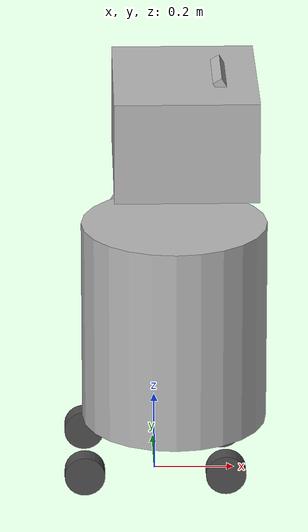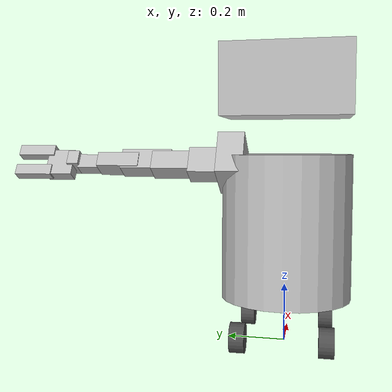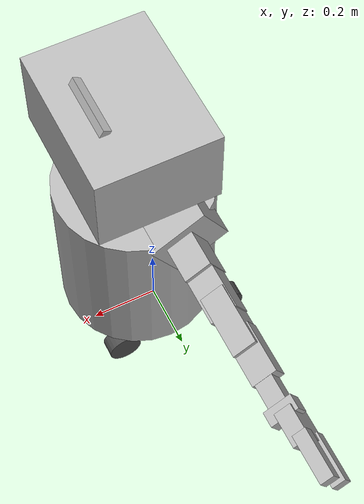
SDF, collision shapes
<sdf version='1.6'>
  <model name='mbot'>
    <link name='base_link'>
      <pose frame=''>0 0 0 0 -0 0</pose>
      <inertial>
        <pose frame=''>-2e-06 3e-06 0.000729 0 -0 0</pose>
        <mass>40.241</mass>
        <inertia>
          <ixx>1.52278</ixx>
          <ixy>8.39902e-06</ixy>
          <ixz>-4.11607e-05</ixz>
          <iyy>3.15312</iyy>
          <iyz>0.0074909</iyz>
          <izz>3.07235</izz>
        </inertia>
      </inertial>
      <collision name='base_link_collision'>
        <pose frame=''>0.05 0 0.4 0 -0 0</pose>
        <geometry>
          <cylinder>
            <length>0.515</length>
            <radius>0.23</radius>
          </cylinder>
        </geometry>
        <surface>
          <contact>
            <ode/>
          </contact>
          <friction>
            <ode/>
          </friction>
        </surface>
      </collision>
      <collision name='base_link_fixed_joint_lump__left_arm_base_link_collision_1'>
        <pose frame=''>-0.006972 0.187 0.625729 1.5708 1.04934 3.14159</pose>
        <geometry>
          <box>
            <size>0.154 0.177 0.094</size>
          </box>
        </geometry>
      </collision>
      <visual name='base_link_visual'>
        <pose frame=''>0 0 0.025 0 -0 0</pose>
        <geometry>
          <mesh>
            <scale>1 1 1</scale>
            <uri>model://mbot_description/meshes/body/mbot_body.dae</uri>
          </mesh>
        </geometry>
        <material>
          <script>
            <name>Gazebo/DepthMapVS</name>
            <uri>file://media/materials/scripts/gazebo.material</uri>
          </script>
        </material>
      </visual>
      <visual name='base_link_fixed_joint_lump__base_laser_rear_link_visual_1'>
        <pose frame=''>-0.2795 0 0.1335 -3.14159 -0 -3.14159</pose>
        <geometry>
          <mesh>
            <scale>1 1 1</scale>
            <uri>model://mbot_description/meshes/sensors/hokuyo.dae</uri>
          </mesh>
        </geometry>
        <material>
          <script>
            <uri>__default__</uri>
            <name>__default__</name>
          </script>
        </material>
      </visual>
      <visual name='base_link_fixed_joint_lump__base_laser_front_link_visual_2'>
        <pose frame=''>0.2785 0 0.1335 0 -0 0</pose>
        <geometry>
          <mesh>
            <scale>1 1 1</scale>
            <uri>model://mbot_description/meshes/sensors/hokuyo.dae</uri>
          </mesh>
        </geometry>
        <material>
          <script>
            <uri>__default__</uri>
            <name>__default__</name>
          </script>
        </material>
      </visual>
      <visual name='base_link_fixed_joint_lump__left_arm_base_link_visual_3'>
        <pose frame=''>0.003 0.14 0.62 1.5708 1.04934 3.14159</pose>
        <geometry>
          <mesh>
            <scale>1 1 1</scale>
            <uri>model://cyton_gamma_1500_description/meshes/base.dae</uri>
          </mesh>
        </geometry>
      </visual>
      <velocity_decay/>
      <gravity>1</gravity>
      <velocity_decay/>
      <sensor name='rear_hokuyo_sensor' type='ray'>
        <visualize>0</visualize>
        <update_rate>34.5</update_rate>
        <ray>
          <scan>
            <horizontal>
              <samples>720</samples>
              <resolution>1</resolution>
              <min_angle>-1.5708</min_angle>
              <max_angle>1.5708</max_angle>
            </horizontal>
          </scan>
          <range>
            <min>0.023</min>
            <max>60</max>
            <resolution>0.001</resolution>
          </range>
          <noise>
            <type>gaussian</type>
            <mean>0</mean>
            <stddev>0.01</stddev>
          </noise>
        </ray>
        <plugin name='gazebo_ros_rear_hokuyo_controller' filename='libgazebo_ros_laser.so'>
          <topicName>/scan_rear</topicName>
          <frameName>base_laser_rear_link</frameName>
        </plugin>
        <pose frame=''>-0.2795 0 0.1335 -3.14159 -0 -3.14159</pose>
      </sensor>
      <gravity>1</gravity>
      <velocity_decay/>
      <self_collide>0</self_collide>
      <sensor name='front_hokuyo_sensor' type='ray'>
        <visualize>0</visualize>
        <update_rate>4.3</update_rate>
        <ray>
          <scan>
            <horizontal>
              <samples>512</samples>
              <resolution>1</resolution>
              <min_angle>-1.5708</min_angle>
              <max_angle>1.5708</max_angle>
            </horizontal>
          </scan>
          <range>
            <min>0.0199999</min>
            <max>5.6</max>
            <resolution>0.001</resolution>
          </range>
          <noise>
            <type>gaussian</type>
            <mean>0</mean>
            <stddev>0.01</stddev>
          </noise>
        </ray>
        <plugin name='gazebo_ros_front_hokuyo_controller' filename='libgazebo_ros_laser.so'>
          <topicName>/scan_front</topicName>
          <frameName>base_laser_front_link</frameName>
        </plugin>
        <pose frame=''>0.2785 0 0.1335 0 -0 0</pose>
      </sensor>
    </link>
    <link name='head_link'>
      <pose frame=''>0.05 0 0.765 0 -0 0</pose>
      <inertial>
        <pose frame=''>0.002353 0 0.00098 0 -0 0</pose>
        <mass>10.2</mass>
        <inertia>
          <ixx>0.101076</ixx>
          <ixy>0</ixy>
          <ixz>-0.00117147</ixz>
          <iyy>0.103345</iyy>
          <iyz>0</iyz>
          <izz>0.103409</izz>
        </inertia>
      </inertial>
      <collision name='head_link_collision'>
        <pose frame=''>0.025 0 0.15 0 -0 0</pose>
        <geometry>
          <box>
            <size>0.35 0.45 0.25</size>
          </box>
        </geometry>
        <surface>
          <contact>
            <ode/>
          </contact>
          <friction>
            <ode/>
          </friction>
        </surface>
      </collision>
      <collision name='head_link_fixed_joint_lump__neck_camera_model_link_collision_1'>
        <pose frame=''>0.12 0 0.05 0 0.8 0</pose>
        <geometry>
          <box>
            <size>0.035 0.185 0.025</size>
          </box>
        </geometry>
      </collision>
      <visual name='head_link_visual'>
        <pose frame=''>0 0 0 0 -0 0</pose>
        <geometry>
          <mesh>
            <scale>1 1 1</scale>
            <uri>model://mbot_description/meshes/head/mbot_head.dae</uri>
          </mesh>
        </geometry>
        <material>
          <script>
            <name>Gazebo/DepthMapVS</name>
            <uri>file://media/materials/scripts/gazebo.material</uri>
          </script>
        </material>
      </visual>
      <visual name='head_link_fixed_joint_lump__neck_camera_model_link_visual_1'>
        <pose frame=''>0.146898 0 0.051729 0 0.8 0</pose>
        <geometry>
          <mesh>
            <scale>1 1 1</scale>
            <uri>model://mbot_description/meshes/sensors/asus_camera_simple.dae</uri>
          </mesh>
        </geometry>
      </visual>
      <velocity_decay/>
      <gravity>1</gravity>
      <gravity>1</gravity>
      <velocity_decay/>
      <self_collide>0</self_collide>
      <sensor name='neck_camera' type='depth'>
        <always_on>1</always_on>
        <update_rate>20</update_rate>
        <camera name='__default__'>
          <horizontal_fov>1.0472</horizontal_fov>
          <image>
            <format>B8G8R8</format>
            <width>640</width>
            <height>480</height>
          </image>
          <clip>
            <near>0.05</near>
            <far>8</far>
          </clip>
        </camera>
        <plugin name='neck_camera_camera_controller' filename='libgazebo_ros_openni_kinect.so'>
          <cameraName>neck_camera</cameraName>
          <alwaysOn>true</alwaysOn>
          <updateRate>10</updateRate>
          <imageTopicName>rgb/image_raw</imageTopicName>
          <depthImageTopicName>depth/image_raw</depthImageTopicName>
          <pointCloudTopicName>depth_registered/points</pointCloudTopicName>
          <cameraInfoTopicName>rgb/camera_info</cameraInfoTopicName>
          <depthImageCameraInfoTopicName>depth/camera_info</depthImageCameraInfoTopicName>
          <frameName>neck_camera_depth_optical_frame</frameName>
          <baseline>0.1</baseline>
          <distortion_k1>0.0</distortion_k1>
          <distortion_k2>0.0</distortion_k2>
          <distortion_k3>0.0</distortion_k3>
          <distortion_t1>0.0</distortion_t1>
          <distortion_t2>0.0</distortion_t2>
          <pointCloudCutoff>0.4</pointCloudCutoff>
        </plugin>
        <pose frame=''>0.177476 0.048777 0.044032 -0.00322 0.797828 0.093157</pose>
      </sensor>
    </link>
    <joint name='base_link_to_head_link_joint' type='revolute'>
      <child>head_link</child>
      <parent>base_link</parent>
      <axis>
        <xyz>0 0 -1</xyz>
        <limit>
          <lower>-1.5708</lower>
          <upper>1.5708</upper>
          <effort>100</effort>
          <velocity>1</velocity>
        </limit>
        <dynamics>
          <spring_reference>0</spring_reference>
          <spring_stiffness>0</spring_stiffness>
        </dynamics>
        <use_parent_model_frame>1</use_parent_model_frame>
      </axis>
    </joint>
    <link name='head_camera_model_link'>
      <pose frame=''>0.16 0 1.04 0 1.05 0</pose>
      <inertial>
        <pose frame=''>0 0 0 0 -0 0</pose>
        <mass>0.2</mass>
        <inertia>
          <ixx>0.00058083</ixx>
          <ixy>0</ixy>
          <ixz>0</ixz>
          <iyy>3.0833e-05</iyy>
          <iyz>0</iyz>
          <izz>0.00059083</izz>
        </inertia>
      </inertial>
      <collision name='head_camera_model_link_collision'>
        <pose frame=''>0 0 0 0 -0 0</pose>
        <geometry>
          <box>
            <size>0.035 0.185 0.025</size>
          </box>
        </geometry>
      </collision>
      <visual name='head_camera_model_link_visual'>
        <pose frame=''>0.0175 0 0.0205 0 -0 0</pose>
        <geometry>
          <mesh>
            <scale>1 1 1</scale>
            <uri>model://mbot_description/meshes/sensors/asus_camera_simple.dae</uri>
          </mesh>
        </geometry>
      </visual>
      <gravity>1</gravity>
      <velocity_decay/>
      <self_collide>0</self_collide>
      <sensor name='head_camera' type='depth'>
        <always_on>1</always_on>
        <update_rate>20</update_rate>
        <camera name='__default__'>
          <horizontal_fov>1.0472</horizontal_fov>
          <image>
            <format>B8G8R8</format>
            <width>640</width>
            <height>480</height>
          </image>
          <clip>
            <near>0.05</near>
            <far>8</far>
          </clip>
        </camera>
        <plugin name='head_camera_camera_controller' filename='libgazebo_ros_openni_kinect.so'>
          <cameraName>head_camera</cameraName>
          <alwaysOn>true</alwaysOn>
          <updateRate>10</updateRate>
          <imageTopicName>rgb/image_raw</imageTopicName>
          <depthImageTopicName>depth/image_raw</depthImageTopicName>
          <pointCloudTopicName>depth_registered/points</pointCloudTopicName>
          <cameraInfoTopicName>rgb/camera_info</cameraInfoTopicName>
          <depthImageCameraInfoTopicName>depth/camera_info</depthImageCameraInfoTopicName>
          <frameName>head_camera_depth_optical_frame</frameName>
          <baseline>0.1</baseline>
          <distortion_k1>0.0</distortion_k1>
          <distortion_k2>0.0</distortion_k2>
          <distortion_k3>0.0</distortion_k3>
          <distortion_t1>0.0</distortion_t1>
          <distortion_t2>0.0</distortion_t2>
          <pointCloudCutoff>0.4</pointCloudCutoff>
        </plugin>
        <pose frame=''>0.076011 0.048975 0.02001 -0.01 0.04 0.03</pose>
      </sensor>
    </link>
    <joint name='head_link_to_head_camera_link' type='revolute'>
      <child>head_camera_model_link</child>
      <parent>head_link</parent>
      <axis>
        <xyz>0 -1 0</xyz>
        <limit>
          <lower>0.523599</lower>
          <upper>1.658</upper>
          <effort>1</effort>
          <velocity>5.23599</velocity>
        </limit>
        <dynamics>
          <spring_reference>0</spring_reference>
          <spring_stiffness>0</spring_stiffness>
        </dynamics>
        <use_parent_model_frame>1</use_parent_model_frame>
      </axis>
    </joint>
    <link name='left_arm_shoulder_roll'>
      <pose frame=''>0.003 0.19315 0.62 1.5708 1.04934 3.14159</pose>
      <inertial>
        <pose frame=''>0 0 0 0 -0 0</pose>
        <mass>0.001</mass>
        <inertia>
          <ixx>0.1027</ixx>
          <ixy>0</ixy>
          <ixz>0</ixz>
          <iyy>0.1027</iyy>
          <iyz>0</iyz>
          <izz>0.1027</izz>
        </inertia>
      </inertial>
      <collision name='left_arm_shoulder_roll_collision'>
        <pose frame=''>0 0 0.0587 1.5708 -0 0</pose>
        <geometry>
          <box>
            <size>0.09829 0.18143 0.08392</size>
          </box>
        </geometry>
      </collision>
      <visual name='left_arm_shoulder_roll_visual'>
        <pose frame=''>0 0 0 1.5708 -0 0.384</pose>
        <geometry>
          <mesh>
            <scale>1 1 1</scale>
            <uri>model://cyton_gamma_1500_description/meshes/shoulder_roll.dae</uri>
          </mesh>
        </geometry>
      </visual>
    </link>
    <joint name='left_arm_joint0' type='revolute'>
      <child>left_arm_shoulder_roll</child>
      <parent>base_link</parent>
      <axis>
        <xyz>0 1 -0</xyz>
        <limit>
          <lower>-2.5509</lower>
          <upper>2.5585</upper>
          <effort>100</effort>
          <velocity>1</velocity>
        </limit>
        <dynamics>
          <spring_reference>0</spring_reference>
          <spring_stiffness>0</spring_stiffness>
        </dynamics>
        <use_parent_model_frame>1</use_parent_model_frame>
      </axis>
    </joint>
    <link name='left_arm_shoulder_pitch'>
      <pose frame=''>-0.007212 0.3175 0.602225 1.5708 1.04934 3.14159</pose>
      <inertial>
        <pose frame=''>0 0 0 0 -0 0</pose>
        <mass>0.001</mass>
        <inertia>
          <ixx>0.0827</ixx>
          <ixy>0</ixy>
          <ixz>0</ixz>
          <iyy>0.0827</iyy>
          <iyz>0</iyz>
          <izz>0.0827</izz>
        </inertia>
      </inertial>
      <collision name='left_arm_shoulder_pitch_collision'>
        <pose frame=''>-0.02 -0.001 0.064 1.5708 -0 0</pose>
        <geometry>
          <box>
            <size>0.0709 0.19363 0.083</size>
          </box>
        </geometry>
      </collision>
      <visual name='left_arm_shoulder_pitch_visual'>
        <pose frame=''>0 0 0 1.5708 -0 0</pose>
        <geometry>
          <mesh>
            <scale>1 1 1</scale>
            <uri>model://cyton_gamma_1500_description/meshes/shoulder_pitch.dae</uri>
          </mesh>
        </geometry>
      </visual>
    </link>
    <joint name='left_arm_joint1' type='revolute'>
      <child>left_arm_shoulder_pitch</child>
      <parent>left_arm_shoulder_roll</parent>
      <axis>
        <xyz>-0.498144 0 -0.867094</xyz>
        <limit>
          <lower>-1.707</lower>
          <upper>1.6379</upper>
          <effort>100</effort>
          <velocity>1</velocity>
        </limit>
        <dynamics>
          <spring_reference>0</spring_reference>
          <spring_stiffness>0</spring_stiffness>
        </dynamics>
        <use_parent_model_frame>1</use_parent_model_frame>
      </axis>
    </joint>
    <link name='left_arm_shoulder_yaw'>
      <pose frame=''>0.021274 0.443 0.610655 1.5708 1.04934 3.14159</pose>
      <inertial>
        <pose frame=''>0 0 0 0 -0 0</pose>
        <mass>0.001</mass>
        <inertia>
          <ixx>0.0627</ixx>
          <ixy>0</ixy>
          <ixz>0</ixz>
          <iyy>0.0627</iyy>
          <iyz>0</iyz>
          <izz>0.0627</izz>
        </inertia>
      </inertial>
      <collision name='left_arm_shoulder_yaw_collision'>
        <pose frame=''>-0.003 0.0225 0.057 1.5708 0 -1.5708</pose>
        <geometry>
          <box>
            <size>0.0717 0.1846 0.0756</size>
          </box>
        </geometry>
      </collision>
      <visual name='left_arm_shoulder_yaw_visual'>
        <pose frame=''>0 0 0 1.5708 0 -1.5708</pose>
        <geometry>
          <mesh>
            <scale>1 1 1</scale>
            <uri>model://cyton_gamma_1500_description/meshes/shoulder_yaw.dae</uri>
          </mesh>
        </geometry>
      </visual>
    </link>
    <joint name='left_arm_joint2' type='revolute'>
      <child>left_arm_shoulder_yaw</child>
      <parent>left_arm_shoulder_pitch</parent>
      <axis>
        <xyz>0.867094 -0 -0.498144</xyz>
        <limit>
          <lower>-1.5459</lower>
          <upper>1.73</upper>
          <effort>100</effort>
          <velocity>1</velocity>
        </limit>
        <dynamics>
          <spring_reference>0</spring_reference>
          <spring_stiffness>0</spring_stiffness>
        </dynamics>
        <use_parent_model_frame>1</use_parent_model_frame>
      </axis>
    </joint>
    <link name='left_arm_elbow_pitch'>
      <pose frame=''>-0.005555 0.5588 0.605309 1.5708 1.04934 3.14159</pose>
      <inertial>
        <pose frame=''>0 0 0 0 -0 0</pose>
        <mass>0.001</mass>
        <inertia>
          <ixx>0.0327</ixx>
          <ixy>0</ixy>
          <ixz>0</ixz>
          <iyy>0.0327</iyy>
          <iyz>0</iyz>
          <izz>0.0327</izz>
        </inertia>
      </inertial>
      <collision name='left_arm_elbow_pitch_collision'>
        <pose frame=''>-0.017 0.004 0.0461 1.5708 -0 -3.14159</pose>
        <geometry>
          <box>
            <size>0.0549 0.1557 0.076</size>
          </box>
        </geometry>
      </collision>
      <visual name='left_arm_elbow_pitch_visual'>
        <pose frame=''>0 0 0 1.5708 -0 -3.14159</pose>
        <geometry>
          <mesh>
            <scale>1 1 1</scale>
            <uri>model://cyton_gamma_1500_description/meshes/elbow_pitch.dae</uri>
          </mesh>
        </geometry>
      </visual>
    </link>
    <joint name='left_arm_joint3' type='revolute'>
      <child>left_arm_elbow_pitch</child>
      <parent>left_arm_shoulder_yaw</parent>
      <axis>
        <xyz>-0.498144 0 -0.867094</xyz>
        <limit>
          <lower>-1.6072</lower>
          <upper>1.6149</upper>
          <effort>100</effort>
          <velocity>1</velocity>
        </limit>
        <dynamics>
          <spring_reference>0</spring_reference>
          <spring_stiffness>0</spring_stiffness>
        </dynamics>
        <use_parent_model_frame>1</use_parent_model_frame>
      </axis>
    </joint>
    <link name='left_arm_elbow_yaw'>
      <pose frame=''>0.018571 0.65626 0.61117 1.5708 1.04934 3.14159</pose>
      <inertial>
        <pose frame=''>0 0 0 0 -0 0</pose>
        <mass>0.001</mass>
        <inertia>
          <ixx>0.0227</ixx>
          <ixy>0</ixy>
          <ixz>0</ixz>
          <iyy>0.0227</iyy>
          <iyz>0</iyz>
          <izz>0.0227</izz>
        </inertia>
      </inertial>
      <collision name='left_arm_elbow_yaw_collision'>
        <pose frame=''>0 0.0172 0.047 1.5708 -0 1.5708</pose>
        <geometry>
          <box>
            <size>0.0535 0.116 0.053</size>
          </box>
        </geometry>
      </collision>
      <visual name='left_arm_elbow_yaw_visual'>
        <pose frame=''>0 0 0 1.5708 -0 1.5708</pose>
        <geometry>
          <mesh>
            <scale>1 1 1</scale>
            <uri>model://cyton_gamma_1500_description/meshes/elbow_yaw.dae</uri>
          </mesh>
        </geometry>
      </visual>
    </link>
    <joint name='left_arm_joint4' type='revolute'>
      <child>left_arm_elbow_yaw</child>
      <parent>left_arm_elbow_pitch</parent>
      <axis>
        <xyz>0.867094 -0 -0.498144</xyz>
        <limit>
          <lower>-1.8757</lower>
          <upper>1.4615</upper>
          <effort>100</effort>
          <velocity>1</velocity>
        </limit>
        <dynamics>
          <spring_reference>0</spring_reference>
          <spring_stiffness>0</spring_stiffness>
        </dynamics>
        <use_parent_model_frame>1</use_parent_model_frame>
      </axis>
    </joint>
    <link name='left_arm_wrist_pitch'>
      <pose frame=''>0.016044 0.72806 0.642906 -1.5708 -1.04934 -0</pose>
      <inertial>
        <pose frame=''>0 0 0 0 -0 0</pose>
        <mass>0.001</mass>
        <inertia>
          <ixx>0.0127</ixx>
          <ixy>0</ixy>
          <ixz>0</ixz>
          <iyy>0.0127</iyy>
          <iyz>0</iyz>
          <izz>0.0127</izz>
        </inertia>
      </inertial>
      <collision name='left_arm_wrist_pitch_collision'>
        <pose frame=''>-0.02 0 0.05 1.5708 -0 1.5708</pose>
        <geometry>
          <box>
            <size>0.085 0.0435 0.05185</size>
          </box>
        </geometry>
      </collision>
      <visual name='left_arm_wrist_pitch_visual'>
        <pose frame=''>0 0 0 1.5708 -0 1.5708</pose>
        <geometry>
          <mesh>
            <scale>1 1 1</scale>
            <uri>model://cyton_gamma_1500_description/meshes/wrist_pitch.dae</uri>
          </mesh>
        </geometry>
      </visual>
    </link>
    <joint name='left_arm_joint5' type='revolute'>
      <child>left_arm_wrist_pitch</child>
      <parent>left_arm_elbow_yaw</parent>
      <axis>
        <xyz>-0.498144 0 -0.867094</xyz>
        <limit>
          <lower>-1.5766</lower>
          <upper>1.5382</upper>
          <effort>100</effort>
          <velocity>1</velocity>
        </limit>
        <dynamics>
          <spring_reference>0</spring_reference>
          <spring_stiffness>0</spring_stiffness>
        </dynamics>
        <use_parent_model_frame>1</use_parent_model_frame>
      </axis>
    </joint>
    <link name='left_arm_ist_gripper_mount'>
      <pose frame=''>0.002966 0.779485 0.620141 -1.5708 0.521457 -0</pose>
      <inertial>
        <pose frame=''>0 0 0 0 -0 0</pose>
        <mass>0.001</mass>
        <inertia>
          <ixx>0.0027</ixx>
          <ixy>0</ixy>
          <ixz>0</ixz>
          <iyy>0.0027</iyy>
          <iyz>0</iyz>
          <izz>0.0027</izz>
        </inertia>
      </inertial>
      <collision name='left_arm_ist_gripper_mount_collision'>
        <pose frame=''>-0.007 0.008 0.05 -3.14159 0 -1.5708</pose>
        <geometry>
          <box>
            <size>0.1 0.05 0.1</size>
          </box>
        </geometry>
      </collision>
      <visual name='left_arm_ist_gripper_mount_visual'>
        <pose frame=''>-0.018 -0.04 -0.019 0 -0 0</pose>
        <geometry>
          <mesh>
            <scale>1 1 1</scale>
            <uri>model://cyton_gamma_1500_description/meshes/ist_gripper_mount.dae</uri>
          </mesh>
        </geometry>
      </visual>
      <visual name='left_arm_ist_gripper_mount_fixed_joint_lump__left_arm_virtual_endeffector_visual_1'>
        <pose frame=''>0 0 0.17 0 -0 0</pose>
        <geometry>
          <sphere>
            <radius>0.002</radius>
          </sphere>
        </geometry>
      </visual>
    </link>
    <joint name='left_arm_joint6' type='revolute'>
      <child>left_arm_ist_gripper_mount</child>
      <parent>left_arm_wrist_pitch</parent>
      <axis>
        <xyz>0 1 -0</xyz>
        <limit>
          <lower>-2.5279</lower>
          <upper>2.5355</upper>
          <effort>100</effort>
          <velocity>1</velocity>
        </limit>
        <dynamics>
          <spring_reference>0</spring_reference>
          <spring_stiffness>0</spring_stiffness>
        </dynamics>
        <use_parent_model_frame>1</use_parent_model_frame>
      </axis>
    </joint>
    <link name='left_arm_gripper_finger1'>
      <pose frame=''>-0.008225 0.877485 0.667108 -3.14159 1.04934 3.14159</pose>
      <inertial>
        <pose frame=''>0 0 0 0 -0 0</pose>
        <mass>0.001</mass>
        <inertia>
          <ixx>0.0027</ixx>
          <ixy>0</ixy>
          <ixz>0</ixz>
          <iyy>0.0027</iyy>
          <iyz>0</iyz>
          <izz>0.0027</izz>
        </inertia>
      </inertial>
      <collision name='left_arm_gripper_finger1_collision'>
        <pose frame=''>-0.003 0.05 0.015 0 -0 0</pose>
        <geometry>
          <box>
            <size>0.04 0.14 0.04</size>
          </box>
        </geometry>
      </collision>
      <visual name='left_arm_gripper_finger1_visual'>
        <pose frame=''>0 0 0 0 -0 0</pose>
        <geometry>
          <mesh>
            <scale>1 1 1</scale>
            <uri>model://cyton_gamma_1500_description/meshes/ist_finger.dae</uri>
          </mesh>
        </geometry>
      </visual>
    </link>
    <joint name='left_arm_gripper_joint' type='revolute'>
      <child>left_arm_gripper_finger1</child>
      <parent>left_arm_ist_gripper_mount</parent>
      <axis>
        <xyz>0.867094 -0 -0.498144</xyz>
        <limit>
          <lower>-0.08</lower>
          <upper>0.5</upper>
          <effort>100</effort>
          <velocity>1</velocity>
        </limit>
        <dynamics>
          <spring_reference>0</spring_reference>
          <spring_stiffness>0</spring_stiffness>
        </dynamics>
        <use_parent_model_frame>1</use_parent_model_frame>
      </axis>
    </joint>
    <link name='left_arm_gripper_finger2'>
      <pose frame=''>-0.019648 0.877485 0.587001 -0 -1.04934 -0</pose>
      <inertial>
        <pose frame=''>0 0 0 0 -0 0</pose>
        <mass>0.001</mass>
        <inertia>
          <ixx>0.0027</ixx>
          <ixy>0</ixy>
          <ixz>0</ixz>
          <iyy>0.0027</iyy>
          <iyz>0</iyz>
          <izz>0.0027</izz>
        </inertia>
      </inertial>
      <collision name='left_arm_gripper_finger2_collision'>
        <pose frame=''>-0.003 0.05 0.015 0 -0 0</pose>
        <geometry>
          <box>
            <size>0.04 0.14 0.04</size>
          </box>
        </geometry>
      </collision>
      <visual name='left_arm_gripper_finger2_visual'>
        <pose frame=''>0 0 0 0 -0 0</pose>
        <geometry>
          <mesh>
            <scale>1 1 1</scale>
            <uri>model://cyton_gamma_1500_description/meshes/ist_finger.dae</uri>
          </mesh>
        </geometry>
      </visual>
    </link>
    <joint name='left_arm_gripper_joint2' type='revolute'>
      <child>left_arm_gripper_finger2</child>
      <parent>left_arm_ist_gripper_mount</parent>
      <axis>
        <xyz>-0.867094 0 0.498144</xyz>
        <limit>
          <lower>-0.08</lower>
          <upper>0.5</upper>
          <effort>100</effort>
          <velocity>1</velocity>
        </limit>
        <dynamics>
          <spring_reference>0</spring_reference>
          <spring_stiffness>0</spring_stiffness>
        </dynamics>
        <use_parent_model_frame>1</use_parent_model_frame>
      </axis>
    </joint>
    <link name='front_left_wheel_link'>
      <pose frame=''>-0.175 0.14429 0.05 0 -0 0</pose>
      <inertial>
        <pose frame=''>0 0 0 0 -0 0</pose>
        <mass>2.3</mass>
        <inertia>
          <ixx>0.0033212</ixx>
          <ixy>0</ixy>
          <ixz>0</ixz>
          <iyy>0.0066424</iyy>
          <iyz>0</iyz>
          <izz>0.0033212</izz>
        </inertia>
      </inertial>
      <collision name='front_left_wheel_link_collision'>
        <pose frame=''>0 0 0 1.5708 -0 0</pose>
        <geometry>
          <cylinder>
            <length>0.05</length>
            <radius>0.05</radius>
          </cylinder>
        </geometry>
        <surface>
          <contact>
            <ode/>
          </contact>
          <friction>
            <ode>
              <mu>0</mu>
              <mu2>0</mu2>
            </ode>
          </friction>
        </surface>
      </collision>
      <visual name='front_left_wheel_link_visual'>
        <pose frame=''>0 0 0 1.5708 -0 0</pose>
        <geometry>
          <cylinder>
            <length>0.05</length>
            <radius>0.05</radius>
          </cylinder>
        </geometry>
        <material>
          <script>
            <name>Gazebo/DarkGrey</name>
            <uri>file://media/materials/scripts/gazebo.material</uri>
          </script>
        </material>
      </visual>
      <gravity>1</gravity>
      <velocity_decay/>
      <self_collide>0</self_collide>
    </link>
    <joint name='front_left_wheel' type='revolute'>
      <child>front_left_wheel_link</child>
      <parent>base_link</parent>
      <axis>
        <xyz>0 1 0</xyz>
        <limit>
          <lower>-1e+16</lower>
          <upper>1e+16</upper>
        </limit>
        <dynamics>
          <spring_reference>0</spring_reference>
          <spring_stiffness>0</spring_stiffness>
        </dynamics>
        <use_parent_model_frame>1</use_parent_model_frame>
      </axis>
    </joint>
    <link name='front_right_wheel_link'>
      <pose frame=''>0.175 0.14429 0.05 0 -0 0</pose>
      <inertial>
        <pose frame=''>0 0 0 0 -0 0</pose>
        <mass>2.3</mass>
        <inertia>
          <ixx>0.0033212</ixx>
          <ixy>0</ixy>
          <ixz>0</ixz>
          <iyy>0.0066424</iyy>
          <iyz>0</iyz>
          <izz>0.0033212</izz>
        </inertia>
      </inertial>
      <collision name='front_right_wheel_link_collision'>
        <pose frame=''>0 0 0 1.5708 -0 0</pose>
        <geometry>
          <cylinder>
            <length>0.05</length>
            <radius>0.05</radius>
          </cylinder>
        </geometry>
        <surface>
          <contact>
            <ode/>
          </contact>
          <friction>
            <ode>
              <mu>0</mu>
              <mu2>0</mu2>
            </ode>
          </friction>
        </surface>
      </collision>
      <visual name='front_right_wheel_link_visual'>
        <pose frame=''>0 0 0 1.5708 -0 0</pose>
        <geometry>
          <cylinder>
            <length>0.05</length>
            <radius>0.05</radius>
          </cylinder>
        </geometry>
        <material>
          <script>
            <name>Gazebo/DarkGrey</name>
            <uri>file://media/materials/scripts/gazebo.material</uri>
          </script>
        </material>
      </visual>
      <gravity>1</gravity>
      <velocity_decay/>
      <self_collide>0</self_collide>
    </link>
    <joint name='front_right_wheel' type='revolute'>
      <child>front_right_wheel_link</child>
      <parent>base_link</parent>
      <axis>
        <xyz>0 1 0</xyz>
        <limit>
          <lower>-1e+16</lower>
          <upper>1e+16</upper>
        </limit>
        <dynamics>
          <spring_reference>0</spring_reference>
          <spring_stiffness>0</spring_stiffness>
        </dynamics>
        <use_parent_model_frame>1</use_parent_model_frame>
      </axis>
    </joint>
    <link name='rear_left_wheel_link'>
      <pose frame=''>-0.175 -0.14429 0.05 0 -0 0</pose>
      <inertial>
        <pose frame=''>0 0 0 0 -0 0</pose>
        <mass>2.3</mass>
        <inertia>
          <ixx>0.0033212</ixx>
          <ixy>0</ixy>
          <ixz>0</ixz>
          <iyy>0.0066424</iyy>
          <iyz>0</iyz>
          <izz>0.0033212</izz>
        </inertia>
      </inertial>
      <collision name='rear_left_wheel_link_collision'>
        <pose frame=''>0 0 0 1.5708 -0 0</pose>
        <geometry>
          <cylinder>
            <length>0.05</length>
            <radius>0.05</radius>
          </cylinder>
        </geometry>
        <surface>
          <contact>
            <ode/>
          </contact>
          <friction>
            <ode>
              <mu>0</mu>
              <mu2>0</mu2>
            </ode>
          </friction>
        </surface>
      </collision>
      <visual name='rear_left_wheel_link_visual'>
        <pose frame=''>0 0 0 1.5708 -0 0</pose>
        <geometry>
          <cylinder>
            <length>0.05</length>
            <radius>0.05</radius>
          </cylinder>
        </geometry>
        <material>
          <script>
            <name>Gazebo/DarkGrey</name>
            <uri>file://media/materials/scripts/gazebo.material</uri>
          </script>
        </material>
      </visual>
      <gravity>1</gravity>
      <velocity_decay/>
      <self_collide>0</self_collide>
    </link>
    <joint name='rear_left_wheel' type='revolute'>
      <child>rear_left_wheel_link</child>
      <parent>base_link</parent>
      <axis>
        <xyz>0 1 0</xyz>
        <limit>
          <lower>-1e+16</lower>
          <upper>1e+16</upper>
        </limit>
        <dynamics>
          <spring_reference>0</spring_reference>
          <spring_stiffness>0</spring_stiffness>
        </dynamics>
        <use_parent_model_frame>1</use_parent_model_frame>
      </axis>
    </joint>
    <link name='rear_right_wheel_link'>
      <pose frame=''>0.175 -0.14429 0.05 0 -0 0</pose>
      <inertial>
        <pose frame=''>0 0 0 0 -0 0</pose>
        <mass>2.3</mass>
        <inertia>
          <ixx>0.0033212</ixx>
          <ixy>0</ixy>
          <ixz>0</ixz>
          <iyy>0.0066424</iyy>
          <iyz>0</iyz>
          <izz>0.0033212</izz>
        </inertia>
      </inertial>
      <collision name='rear_right_wheel_link_collision'>
        <pose frame=''>0 0 0 1.5708 -0 0</pose>
        <geometry>
          <cylinder>
            <length>0.05</length>
            <radius>0.05</radius>
          </cylinder>
        </geometry>
        <surface>
          <contact>
            <ode/>
          </contact>
          <friction>
            <ode>
              <mu>0</mu>
              <mu2>0</mu2>
            </ode>
          </friction>
        </surface>
      </collision>
      <visual name='rear_right_wheel_link_visual'>
        <pose frame=''>0 0 0 1.5708 -0 0</pose>
        <geometry>
          <cylinder>
            <length>0.05</length>
            <radius>0.05</radius>
          </cylinder>
        </geometry>
        <material>
          <script>
            <name>Gazebo/DarkGrey</name>
            <uri>file://media/materials/scripts/gazebo.material</uri>
          </script>
        </material>
      </visual>
      <gravity>1</gravity>
      <velocity_decay/>
      <self_collide>0</self_collide>
    </link>
    <joint name='rear_right_wheel' type='revolute'>
      <child>rear_right_wheel_link</child>
      <parent>base_link</parent>
      <axis>
        <xyz>0 1 0</xyz>
        <limit>
          <lower>-1e+16</lower>
          <upper>1e+16</upper>
        </limit>
        <dynamics>
          <spring_reference>0</spring_reference>
          <spring_stiffness>0</spring_stiffness>
        </dynamics>
        <use_parent_model_frame>1</use_parent_model_frame>
      </axis>
    </joint>
    <plugin name='joint_state_publisher' filename='libgazebo_ros_joint_state_publisher.so'>
      <jointName>left_arm_joint0, left_arm_joint1, left_arm_joint2, left_arm_joint3, left_arm_joint4, left_arm_joint5, left_arm_joint6</jointName>
      <robotNamespace>/</robotNamespace>
      <updateRate>50.0</updateRate>
    </plugin>
    <static>0</static>
    <plugin name='gazebo_ros_control' filename='libgazebo_ros_control.so'/>
    <plugin name='ridgeback_ros_force_based_move' filename='libridgeback_ros_force_based_move.so'>
      <commandTopic>cmd_vel</commandTopic>
      <odometryTopic>differential_odom</odometryTopic>
      <odometryFrame>odom</odometryFrame>
      <odometryRate>25.0</odometryRate>
      <robotBaseFrame>base_link</robotBaseFrame>
      <cmdVelTimeOut>0.25</cmdVelTimeOut>
      <publishOdometryTf>0</publishOdometryTf>
      <yaw_velocity_p_gain>500.0</yaw_velocity_p_gain>
      <x_velocity_p_gain>10000.0</x_velocity_p_gain>
      <y_velocity_p_gain>10000.0</y_velocity_p_gain>
    </plugin>
  </model>
</sdf>
